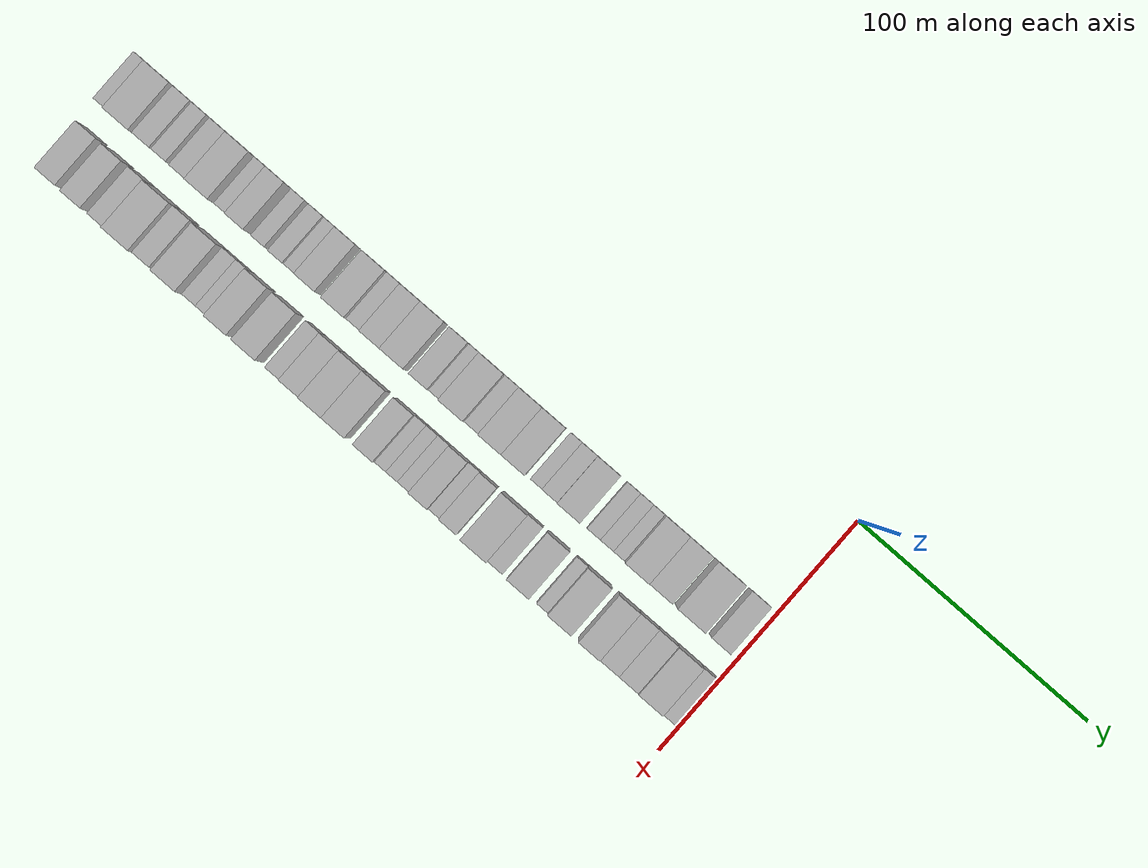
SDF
<sdf version="1.6">
 <world name="default">
  <model name="building_1">
   <static>1</static>
   <pose>50.0000 -275.3579 0 0.000000 0.000000 0.000000</pose>
   <link name="link">
    <pose>0 0 6.00 0 0 0</pose>
    <collision name="collision"><geometry><box><size>20.0000 5.2843 12.0000</size></box></geometry></collision>
    <visual name="visual">
     <cast_shadows>0</cast_shadows>
     <geometry><box><size>20.0000 5.2843 12.0000</size></box></geometry>
     <material>
      <script>
       <uri>model://HANNAS_wall/materials/scripts</uri>
       <uri>model://HANNAS_wall/materials/textures</uri>
       <name>vrc/HANNAS_wall</name>
      </script>
     </material>
    </visual>
   </link>
  </model>
  <model name="building_2">
   <static>1</static>
   <pose>50.0000 -265.2781 0 0.000000 0.000000 0.000000</pose>
   <link name="link">
    <pose>0 0 12.00 0 0 0</pose>
    <collision name="collision"><geometry><box><size>20.0000 10.8752 24.0000</size></box></geometry></collision>
    <visual name="visual">
     <cast_shadows>0</cast_shadows>
     <geometry><box><size>20.0000 10.8752 24.0000</size></box></geometry>
     <material>
      <script>
       <uri>model://HANNAS_wall/materials/scripts</uri>
       <uri>model://HANNAS_wall/materials/textures</uri>
       <name>vrc/HANNAS_wall</name>
      </script>
     </material>
    </visual>
   </link>
  </model>
  <model name="building_3">
   <static>1</static>
   <pose>50.0000 -256.1429 0 0.000000 0.000000 0.000000</pose>
   <link name="link">
    <pose>0 0 9.00 0 0 0</pose>
    <collision name="collision"><geometry><box><size>20.0000 7.3953 18.0000</size></box></geometry></collision>
    <visual name="visual">
     <cast_shadows>0</cast_shadows>
     <geometry><box><size>20.0000 7.3953 18.0000</size></box></geometry>
     <material>
      <script>
       <uri>model://HANNAS_wall/materials/scripts</uri>
       <uri>model://HANNAS_wall/materials/textures</uri>
       <name>vrc/HANNAS_wall</name>
      </script>
     </material>
    </visual>
   </link>
  </model>
  <model name="building_4">
   <static>1</static>
   <pose>50.0000 -249.2715 0 0.000000 0.000000 0.000000</pose>
   <link name="link">
    <pose>0 0 7.50 0 0 0</pose>
    <collision name="collision"><geometry><box><size>20.0000 6.3475 15.0000</size></box></geometry></collision>
    <visual name="visual">
     <cast_shadows>0</cast_shadows>
     <geometry><box><size>20.0000 6.3475 15.0000</size></box></geometry>
     <material>
      <script>
       <uri>model://HANNAS_wall/materials/scripts</uri>
       <uri>model://HANNAS_wall/materials/textures</uri>
       <name>vrc/HANNAS_wall</name>
      </script>
     </material>
    </visual>
   </link>
  </model>
  <model name="building_5">
   <static>1</static>
   <pose>50.0000 -240.1305 0 0.000000 0.000000 0.000000</pose>
   <link name="link">
    <pose>0 0 9.00 0 0 0</pose>
    <collision name="collision"><geometry><box><size>20.0000 7.9344 18.0000</size></box></geometry></collision>
    <visual name="visual">
     <cast_shadows>0</cast_shadows>
     <geometry><box><size>20.0000 7.9344 18.0000</size></box></geometry>
     <material>
      <script>
       <uri>model://HANNAS_wall/materials/scripts</uri>
       <uri>model://HANNAS_wall/materials/textures</uri>
       <name>vrc/HANNAS_wall</name>
      </script>
     </material>
    </visual>
   </link>
  </model>
  <model name="building_6">
   <static>1</static>
   <pose>50.0000 -231.2084 0 0.000000 0.000000 0.000000</pose>
   <link name="link">
    <pose>0 0 12.00 0 0 0</pose>
    <collision name="collision"><geometry><box><size>20.0000 9.9098 24.0000</size></box></geometry></collision>
    <visual name="visual">
     <cast_shadows>0</cast_shadows>
     <geometry><box><size>20.0000 9.9098 24.0000</size></box></geometry>
     <material>
      <script>
       <uri>model://HANNAS_wall/materials/scripts</uri>
       <uri>model://HANNAS_wall/materials/textures</uri>
       <name>vrc/HANNAS_wall</name>
      </script>
     </material>
    </visual>
   </link>
  </model>
  <model name="building_7">
   <static>1</static>
   <pose>50.0000 -223.3316 0 0.000000 0.000000 0.000000</pose>
   <link name="link">
    <pose>0 0 6.00 0 0 0</pose>
    <collision name="collision"><geometry><box><size>20.0000 5.8438 12.0000</size></box></geometry></collision>
    <visual name="visual">
     <cast_shadows>0</cast_shadows>
     <geometry><box><size>20.0000 5.8438 12.0000</size></box></geometry>
     <material>
      <script>
       <uri>model://HANNAS_wall/materials/scripts</uri>
       <uri>model://HANNAS_wall/materials/textures</uri>
       <name>vrc/HANNAS_wall</name>
      </script>
     </material>
    </visual>
   </link>
  </model>
  <model name="building_8">
   <static>1</static>
   <pose>50.0000 -216.3932 0 0.000000 0.000000 0.000000</pose>
   <link name="link">
    <pose>0 0 9.00 0 0 0</pose>
    <collision name="collision"><geometry><box><size>20.0000 8.0331 18.0000</size></box></geometry></collision>
    <visual name="visual">
     <cast_shadows>0</cast_shadows>
     <geometry><box><size>20.0000 8.0331 18.0000</size></box></geometry>
     <material>
      <script>
       <uri>model://HANNAS_wall/materials/scripts</uri>
       <uri>model://HANNAS_wall/materials/textures</uri>
       <name>vrc/HANNAS_wall</name>
      </script>
     </material>
    </visual>
   </link>
  </model>
  <model name="building_9">
   <static>1</static>
   <pose>50.0000 -207.4719 0 0.000000 0.000000 0.000000</pose>
   <link name="link">
    <pose>0 0 6.00 0 0 0</pose>
    <collision name="collision"><geometry><box><size>20.0000 5.8093 12.0000</size></box></geometry></collision>
    <visual name="visual">
     <cast_shadows>0</cast_shadows>
     <geometry><box><size>20.0000 5.8093 12.0000</size></box></geometry>
     <material>
      <script>
       <uri>model://HANNAS_wall/materials/scripts</uri>
       <uri>model://HANNAS_wall/materials/textures</uri>
       <name>vrc/HANNAS_wall</name>
      </script>
     </material>
    </visual>
   </link>
  </model>
  <model name="building_10">
   <static>1</static>
   <pose>50.0000 -199.4390 0 0.000000 0.000000 0.000000</pose>
   <link name="link">
    <pose>0 0 7.50 0 0 0</pose>
    <collision name="collision"><geometry><box><size>20.0000 6.2564 15.0000</size></box></geometry></collision>
    <visual name="visual">
     <cast_shadows>0</cast_shadows>
     <geometry><box><size>20.0000 6.2564 15.0000</size></box></geometry>
     <material>
      <script>
       <uri>model://HANNAS_wall/materials/scripts</uri>
       <uri>model://HANNAS_wall/materials/textures</uri>
       <name>vrc/HANNAS_wall</name>
      </script>
     </material>
    </visual>
   </link>
  </model>
  <model name="building_11">
   <static>1</static>
   <pose>50.0000 -193.6024 0 0.000000 0.000000 0.000000</pose>
   <link name="link">
    <pose>0 0 6.00 0 0 0</pose>
    <collision name="collision"><geometry><box><size>20.0000 5.4169 12.0000</size></box></geometry></collision>
    <visual name="visual">
     <cast_shadows>0</cast_shadows>
     <geometry><box><size>20.0000 5.4169 12.0000</size></box></geometry>
     <material>
      <script>
       <uri>model://HANNAS_wall/materials/scripts</uri>
       <uri>model://HANNAS_wall/materials/textures</uri>
       <name>vrc/HANNAS_wall</name>
      </script>
     </material>
    </visual>
   </link>
  </model>
  <model name="building_12">
   <static>1</static>
   <pose>50.0000 -186.4434 0 0.000000 0.000000 0.000000</pose>
   <link name="link">
    <pose>0 0 9.00 0 0 0</pose>
    <collision name="collision"><geometry><box><size>20.0000 8.9011 18.0000</size></box></geometry></collision>
    <visual name="visual">
     <cast_shadows>0</cast_shadows>
     <geometry><box><size>20.0000 8.9011 18.0000</size></box></geometry>
     <material>
      <script>
       <uri>model://HANNAS_wall/materials/scripts</uri>
       <uri>model://HANNAS_wall/materials/textures</uri>
       <name>vrc/HANNAS_wall</name>
      </script>
     </material>
    </visual>
   </link>
  </model>
  <model name="building_13">
   <static>1</static>
   <pose>50.0000 -174.0192 0 0.000000 0.000000 0.000000</pose>
   <link name="link">
    <pose>0 0 10.50 0 0 0</pose>
    <collision name="collision"><geometry><box><size>20.0000 9.9473 21.0000</size></box></geometry></collision>
    <visual name="visual">
     <cast_shadows>0</cast_shadows>
     <geometry><box><size>20.0000 9.9473 21.0000</size></box></geometry>
     <material>
      <script>
       <uri>model://HANNAS_wall/materials/scripts</uri>
       <uri>model://HANNAS_wall/materials/textures</uri>
       <name>vrc/HANNAS_wall</name>
      </script>
     </material>
    </visual>
   </link>
  </model>
  <model name="building_14">
   <static>1</static>
   <pose>50.0000 -165.8925 0 0.000000 0.000000 0.000000</pose>
   <link name="link">
    <pose>0 0 7.50 0 0 0</pose>
    <collision name="collision"><geometry><box><size>20.0000 6.3062 15.0000</size></box></geometry></collision>
    <visual name="visual">
     <cast_shadows>0</cast_shadows>
     <geometry><box><size>20.0000 6.3062 15.0000</size></box></geometry>
     <material>
      <script>
       <uri>model://HANNAS_wall/materials/scripts</uri>
       <uri>model://HANNAS_wall/materials/textures</uri>
       <name>vrc/HANNAS_wall</name>
      </script>
     </material>
    </visual>
   </link>
  </model>
  <model name="building_15">
   <static>1</static>
   <pose>50.0000 -158.4266 0 0.000000 0.000000 0.000000</pose>
   <link name="link">
    <pose>0 0 10.50 0 0 0</pose>
    <collision name="collision"><geometry><box><size>20.0000 8.6257 21.0000</size></box></geometry></collision>
    <visual name="visual">
     <cast_shadows>0</cast_shadows>
     <geometry><box><size>20.0000 8.6257 21.0000</size></box></geometry>
     <material>
      <script>
       <uri>model://HANNAS_wall/materials/scripts</uri>
       <uri>model://HANNAS_wall/materials/textures</uri>
       <name>vrc/HANNAS_wall</name>
      </script>
     </material>
    </visual>
   </link>
  </model>
  <model name="building_16">
   <static>1</static>
   <pose>50.0000 -149.0510 0 0.000000 0.000000 0.000000</pose>
   <link name="link">
    <pose>0 0 10.50 0 0 0</pose>
    <collision name="collision"><geometry><box><size>20.0000 10.1255 21.0000</size></box></geometry></collision>
    <visual name="visual">
     <cast_shadows>0</cast_shadows>
     <geometry><box><size>20.0000 10.1255 21.0000</size></box></geometry>
     <material>
      <script>
       <uri>model://HANNAS_wall/materials/scripts</uri>
       <uri>model://HANNAS_wall/materials/textures</uri>
       <name>vrc/HANNAS_wall</name>
      </script>
     </material>
    </visual>
   </link>
  </model>
  <model name="building_17">
   <static>1</static>
   <pose>50.0000 -138.0163 0 0.000000 0.000000 0.000000</pose>
   <link name="link">
    <pose>0 0 9.00 0 0 0</pose>
    <collision name="collision"><geometry><box><size>20.0000 7.9438 18.0000</size></box></geometry></collision>
    <visual name="visual">
     <cast_shadows>0</cast_shadows>
     <geometry><box><size>20.0000 7.9438 18.0000</size></box></geometry>
     <material>
      <script>
       <uri>model://HANNAS_wall/materials/scripts</uri>
       <uri>model://HANNAS_wall/materials/textures</uri>
       <name>vrc/HANNAS_wall</name>
      </script>
     </material>
    </visual>
   </link>
  </model>
  <model name="building_18">
   <static>1</static>
   <pose>50.0000 -131.5316 0 0.000000 0.000000 0.000000</pose>
   <link name="link">
    <pose>0 0 6.00 0 0 0</pose>
    <collision name="collision"><geometry><box><size>20.0000 5.0256 12.0000</size></box></geometry></collision>
    <visual name="visual">
     <cast_shadows>0</cast_shadows>
     <geometry><box><size>20.0000 5.0256 12.0000</size></box></geometry>
     <material>
      <script>
       <uri>model://HANNAS_wall/materials/scripts</uri>
       <uri>model://HANNAS_wall/materials/textures</uri>
       <name>vrc/HANNAS_wall</name>
      </script>
     </material>
    </visual>
   </link>
  </model>
  <model name="building_19">
   <static>1</static>
   <pose>50.0000 -123.7338 0 0.000000 0.000000 0.000000</pose>
   <link name="link">
    <pose>0 0 12.00 0 0 0</pose>
    <collision name="collision"><geometry><box><size>20.0000 10.5699 24.0000</size></box></geometry></collision>
    <visual name="visual">
     <cast_shadows>0</cast_shadows>
     <geometry><box><size>20.0000 10.5699 24.0000</size></box></geometry>
     <material>
      <script>
       <uri>model://HANNAS_wall/materials/scripts</uri>
       <uri>model://HANNAS_wall/materials/textures</uri>
       <name>vrc/HANNAS_wall</name>
      </script>
     </material>
    </visual>
   </link>
  </model>
  <model name="building_20">
   <static>1</static>
   <pose>50.0000 -115.3084 0 0.000000 0.000000 0.000000</pose>
   <link name="link">
    <pose>0 0 7.50 0 0 0</pose>
    <collision name="collision"><geometry><box><size>20.0000 6.2810 15.0000</size></box></geometry></collision>
    <visual name="visual">
     <cast_shadows>0</cast_shadows>
     <geometry><box><size>20.0000 6.2810 15.0000</size></box></geometry>
     <material>
      <script>
       <uri>model://HANNAS_wall/materials/scripts</uri>
       <uri>model://HANNAS_wall/materials/textures</uri>
       <name>vrc/HANNAS_wall</name>
      </script>
     </material>
    </visual>
   </link>
  </model>
  <model name="building_21">
   <static>1</static>
   <pose>50.0000 -107.2324 0 0.000000 0.000000 0.000000</pose>
   <link name="link">
    <pose>0 0 12.00 0 0 0</pose>
    <collision name="collision"><geometry><box><size>20.0000 9.8711 24.0000</size></box></geometry></collision>
    <visual name="visual">
     <cast_shadows>0</cast_shadows>
     <geometry><box><size>20.0000 9.8711 24.0000</size></box></geometry>
     <material>
      <script>
       <uri>model://HANNAS_wall/materials/scripts</uri>
       <uri>model://HANNAS_wall/materials/textures</uri>
       <name>vrc/HANNAS_wall</name>
      </script>
     </material>
    </visual>
   </link>
  </model>
  <model name="building_22">
   <static>1</static>
   <pose>50.0000 -97.2972 0 0.000000 0.000000 0.000000</pose>
   <link name="link">
    <pose>0 0 12.00 0 0 0</pose>
    <collision name="collision"><geometry><box><size>20.0000 9.9993 24.0000</size></box></geometry></collision>
    <visual name="visual">
     <cast_shadows>0</cast_shadows>
     <geometry><box><size>20.0000 9.9993 24.0000</size></box></geometry>
     <material>
      <script>
       <uri>model://HANNAS_wall/materials/scripts</uri>
       <uri>model://HANNAS_wall/materials/textures</uri>
       <name>vrc/HANNAS_wall</name>
      </script>
     </material>
    </visual>
   </link>
  </model>
  <model name="building_23">
   <static>1</static>
   <pose>50.0000 -87.7939 0 0.000000 0.000000 0.000000</pose>
   <link name="link">
    <pose>0 0 6.00 0 0 0</pose>
    <collision name="collision"><geometry><box><size>20.0000 5.0073 12.0000</size></box></geometry></collision>
    <visual name="visual">
     <cast_shadows>0</cast_shadows>
     <geometry><box><size>20.0000 5.0073 12.0000</size></box></geometry>
     <material>
      <script>
       <uri>model://HANNAS_wall/materials/scripts</uri>
       <uri>model://HANNAS_wall/materials/textures</uri>
       <name>vrc/HANNAS_wall</name>
      </script>
     </material>
    </visual>
   </link>
  </model>
  <model name="building_24">
   <static>1</static>
   <pose>50.0000 -81.9762 0 0.000000 0.000000 0.000000</pose>
   <link name="link">
    <pose>0 0 7.50 0 0 0</pose>
    <collision name="collision"><geometry><box><size>20.0000 6.6281 15.0000</size></box></geometry></collision>
    <visual name="visual">
     <cast_shadows>0</cast_shadows>
     <geometry><box><size>20.0000 6.6281 15.0000</size></box></geometry>
     <material>
      <script>
       <uri>model://HANNAS_wall/materials/scripts</uri>
       <uri>model://HANNAS_wall/materials/textures</uri>
       <name>vrc/HANNAS_wall</name>
      </script>
     </material>
    </visual>
   </link>
  </model>
  <model name="building_25">
   <static>1</static>
   <pose>50.0000 -73.7933 0 0.000000 0.000000 0.000000</pose>
   <link name="link">
    <pose>0 0 10.50 0 0 0</pose>
    <collision name="collision"><geometry><box><size>20.0000 9.7376 21.0000</size></box></geometry></collision>
    <visual name="visual">
     <cast_shadows>0</cast_shadows>
     <geometry><box><size>20.0000 9.7376 21.0000</size></box></geometry>
     <material>
      <script>
       <uri>model://HANNAS_wall/materials/scripts</uri>
       <uri>model://HANNAS_wall/materials/textures</uri>
       <name>vrc/HANNAS_wall</name>
      </script>
     </material>
    </visual>
   </link>
  </model>
  <model name="building_26">
   <static>1</static>
   <pose>50.0000 -63.0612 0 0.000000 0.000000 0.000000</pose>
   <link name="link">
    <pose>0 0 6.00 0 0 0</pose>
    <collision name="collision"><geometry><box><size>20.0000 5.7266 12.0000</size></box></geometry></collision>
    <visual name="visual">
     <cast_shadows>0</cast_shadows>
     <geometry><box><size>20.0000 5.7266 12.0000</size></box></geometry>
     <material>
      <script>
       <uri>model://HANNAS_wall/materials/scripts</uri>
       <uri>model://HANNAS_wall/materials/textures</uri>
       <name>vrc/HANNAS_wall</name>
      </script>
     </material>
    </visual>
   </link>
  </model>
  <model name="building_27">
   <static>1</static>
   <pose>50.0000 -57.3837 0 0.000000 0.000000 0.000000</pose>
   <link name="link">
    <pose>0 0 6.00 0 0 0</pose>
    <collision name="collision"><geometry><box><size>20.0000 5.6284 12.0000</size></box></geometry></collision>
    <visual name="visual">
     <cast_shadows>0</cast_shadows>
     <geometry><box><size>20.0000 5.6284 12.0000</size></box></geometry>
     <material>
      <script>
       <uri>model://HANNAS_wall/materials/scripts</uri>
       <uri>model://HANNAS_wall/materials/textures</uri>
       <name>vrc/HANNAS_wall</name>
      </script>
     </material>
    </visual>
   </link>
  </model>
  <model name="building_28">
   <static>1</static>
   <pose>50.0000 -52.1638 0 0.000000 0.000000 0.000000</pose>
   <link name="link">
    <pose>0 0 6.00 0 0 0</pose>
    <collision name="collision"><geometry><box><size>20.0000 4.8116 12.0000</size></box></geometry></collision>
    <visual name="visual">
     <cast_shadows>0</cast_shadows>
     <geometry><box><size>20.0000 4.8116 12.0000</size></box></geometry>
     <material>
      <script>
       <uri>model://HANNAS_wall/materials/scripts</uri>
       <uri>model://HANNAS_wall/materials/textures</uri>
       <name>vrc/HANNAS_wall</name>
      </script>
     </material>
    </visual>
   </link>
  </model>
  <model name="building_29">
   <static>1</static>
   <pose>50.0000 -44.6425 0 0.000000 0.000000 0.000000</pose>
   <link name="link">
    <pose>0 0 12.00 0 0 0</pose>
    <collision name="collision"><geometry><box><size>20.0000 10.2310 24.0000</size></box></geometry></collision>
    <visual name="visual">
     <cast_shadows>0</cast_shadows>
     <geometry><box><size>20.0000 10.2310 24.0000</size></box></geometry>
     <material>
      <script>
       <uri>model://HANNAS_wall/materials/scripts</uri>
       <uri>model://HANNAS_wall/materials/textures</uri>
       <name>vrc/HANNAS_wall</name>
      </script>
     </material>
    </visual>
   </link>
  </model>
  <model name="building_30">
   <static>1</static>
   <pose>50.0000 -34.5678 0 0.000000 0.000000 0.000000</pose>
   <link name="link">
    <pose>0 0 10.50 0 0 0</pose>
    <collision name="collision"><geometry><box><size>20.0000 9.9183 21.0000</size></box></geometry></collision>
    <visual name="visual">
     <cast_shadows>0</cast_shadows>
     <geometry><box><size>20.0000 9.9183 21.0000</size></box></geometry>
     <material>
      <script>
       <uri>model://HANNAS_wall/materials/scripts</uri>
       <uri>model://HANNAS_wall/materials/textures</uri>
       <name>vrc/HANNAS_wall</name>
      </script>
     </material>
    </visual>
   </link>
  </model>
  <model name="building_31">
   <static>1</static>
   <pose>50.0000 -21.7144 0 0.000000 0.000000 0.000000</pose>
   <link name="link">
    <pose>0 0 12.00 0 0 0</pose>
    <collision name="collision"><geometry><box><size>20.0000 11.7885 24.0000</size></box></geometry></collision>
    <visual name="visual">
     <cast_shadows>0</cast_shadows>
     <geometry><box><size>20.0000 11.7885 24.0000</size></box></geometry>
     <material>
      <script>
       <uri>model://HANNAS_wall/materials/scripts</uri>
       <uri>model://HANNAS_wall/materials/textures</uri>
       <name>vrc/HANNAS_wall</name>
      </script>
     </material>
    </visual>
   </link>
  </model>
  <model name="building_32">
   <static>1</static>
   <pose>50.0000 -8.7360 0 0.000000 0.000000 0.000000</pose>
   <link name="link">
    <pose>0 0 9.00 0 0 0</pose>
    <collision name="collision"><geometry><box><size>20.0000 8.1682 18.0000</size></box></geometry></collision>
    <visual name="visual">
     <cast_shadows>0</cast_shadows>
     <geometry><box><size>20.0000 8.1682 18.0000</size></box></geometry>
     <material>
      <script>
       <uri>model://HANNAS_wall/materials/scripts</uri>
       <uri>model://HANNAS_wall/materials/textures</uri>
       <name>vrc/HANNAS_wall</name>
      </script>
     </material>
    </visual>
   </link>
  </model>
  <model name="building_65">
   <static>1</static>
   <pose>79.0000 -271.6233 0 0.000000 0.000000 0.000000</pose>
   <link name="link">
    <pose>0 0 9.00 0 0 0</pose>
    <collision name="collision"><geometry><box><size>20.0000 8.7535 18.0000</size></box></geometry></collision>
    <visual name="visual">
     <cast_shadows>0</cast_shadows>
     <geometry><box><size>20.0000 8.7535 18.0000</size></box></geometry>
     <material>
      <script>
       <uri>model://HANNAS_wall/materials/scripts</uri>
       <uri>model://HANNAS_wall/materials/textures</uri>
       <name>vrc/HANNAS_wall</name>
      </script>
     </material>
    </visual>
   </link>
  </model>
  <model name="building_66">
   <static>1</static>
   <pose>79.0000 -259.9285 0 0.000000 0.000000 0.000000</pose>
   <link name="link">
    <pose>0 0 10.50 0 0 0</pose>
    <collision name="collision"><geometry><box><size>20.0000 8.6360 21.0000</size></box></geometry></collision>
    <visual name="visual">
     <cast_shadows>0</cast_shadows>
     <geometry><box><size>20.0000 8.6360 21.0000</size></box></geometry>
     <material>
      <script>
       <uri>model://HANNAS_wall/materials/scripts</uri>
       <uri>model://HANNAS_wall/materials/textures</uri>
       <name>vrc/HANNAS_wall</name>
      </script>
     </material>
    </visual>
   </link>
  </model>
  <model name="building_67">
   <static>1</static>
   <pose>79.0000 -249.7857 0 0.000000 0.000000 0.000000</pose>
   <link name="link">
    <pose>0 0 9.00 0 0 0</pose>
    <collision name="collision"><geometry><box><size>20.0000 7.6496 18.0000</size></box></geometry></collision>
    <visual name="visual">
     <cast_shadows>0</cast_shadows>
     <geometry><box><size>20.0000 7.6496 18.0000</size></box></geometry>
     <material>
      <script>
       <uri>model://HANNAS_wall/materials/scripts</uri>
       <uri>model://HANNAS_wall/materials/textures</uri>
       <name>vrc/HANNAS_wall</name>
      </script>
     </material>
    </visual>
   </link>
  </model>
  <model name="building_68">
   <static>1</static>
   <pose>79.0000 -240.2579 0 0.000000 0.000000 0.000000</pose>
   <link name="link">
    <pose>0 0 12.00 0 0 0</pose>
    <collision name="collision"><geometry><box><size>20.0000 11.4059 24.0000</size></box></geometry></collision>
    <visual name="visual">
     <cast_shadows>0</cast_shadows>
     <geometry><box><size>20.0000 11.4059 24.0000</size></box></geometry>
     <material>
      <script>
       <uri>model://HANNAS_wall/materials/scripts</uri>
       <uri>model://HANNAS_wall/materials/textures</uri>
       <name>vrc/HANNAS_wall</name>
      </script>
     </material>
    </visual>
   </link>
  </model>
  <model name="building_69">
   <static>1</static>
   <pose>79.0000 -230.8504 0 0.000000 0.000000 0.000000</pose>
   <link name="link">
    <pose>0 0 9.00 0 0 0</pose>
    <collision name="collision"><geometry><box><size>20.0000 7.4092 18.0000</size></box></geometry></collision>
    <visual name="visual">
     <cast_shadows>0</cast_shadows>
     <geometry><box><size>20.0000 7.4092 18.0000</size></box></geometry>
     <material>
      <script>
       <uri>model://HANNAS_wall/materials/scripts</uri>
       <uri>model://HANNAS_wall/materials/textures</uri>
       <name>vrc/HANNAS_wall</name>
      </script>
     </material>
    </visual>
   </link>
  </model>
  <model name="building_70">
   <static>1</static>
   <pose>79.0000 -219.9303 0 0.000000 0.000000 0.000000</pose>
   <link name="link">
    <pose>0 0 12.00 0 0 0</pose>
    <collision name="collision"><geometry><box><size>20.0000 10.4309 24.0000</size></box></geometry></collision>
    <visual name="visual">
     <cast_shadows>0</cast_shadows>
     <geometry><box><size>20.0000 10.4309 24.0000</size></box></geometry>
     <material>
      <script>
       <uri>model://HANNAS_wall/materials/scripts</uri>
       <uri>model://HANNAS_wall/materials/textures</uri>
       <name>vrc/HANNAS_wall</name>
      </script>
     </material>
    </visual>
   </link>
  </model>
  <model name="building_71">
   <static>1</static>
   <pose>79.0000 -211.7836 0 0.000000 0.000000 0.000000</pose>
   <link name="link">
    <pose>0 0 6.00 0 0 0</pose>
    <collision name="collision"><geometry><box><size>20.0000 5.8625 12.0000</size></box></geometry></collision>
    <visual name="visual">
     <cast_shadows>0</cast_shadows>
     <geometry><box><size>20.0000 5.8625 12.0000</size></box></geometry>
     <material>
      <script>
       <uri>model://HANNAS_wall/materials/scripts</uri>
       <uri>model://HANNAS_wall/materials/textures</uri>
       <name>vrc/HANNAS_wall</name>
      </script>
     </material>
    </visual>
   </link>
  </model>
  <model name="building_72">
   <static>1</static>
   <pose>79.0000 -206.1311 0 0.000000 0.000000 0.000000</pose>
   <link name="link">
    <pose>0 0 6.00 0 0 0</pose>
    <collision name="collision"><geometry><box><size>20.0000 5.4426 12.0000</size></box></geometry></collision>
    <visual name="visual">
     <cast_shadows>0</cast_shadows>
     <geometry><box><size>20.0000 5.4426 12.0000</size></box></geometry>
     <material>
      <script>
       <uri>model://HANNAS_wall/materials/scripts</uri>
       <uri>model://HANNAS_wall/materials/textures</uri>
       <name>vrc/HANNAS_wall</name>
      </script>
     </material>
    </visual>
   </link>
  </model>
  <model name="building_73">
   <static>1</static>
   <pose>79.0000 -198.5769 0 0.000000 0.000000 0.000000</pose>
   <link name="link">
    <pose>0 0 10.50 0 0 0</pose>
    <collision name="collision"><geometry><box><size>20.0000 9.6657 21.0000</size></box></geometry></collision>
    <visual name="visual">
     <cast_shadows>0</cast_shadows>
     <geometry><box><size>20.0000 9.6657 21.0000</size></box></geometry>
     <material>
      <script>
       <uri>model://HANNAS_wall/materials/scripts</uri>
       <uri>model://HANNAS_wall/materials/textures</uri>
       <name>vrc/HANNAS_wall</name>
      </script>
     </material>
    </visual>
   </link>
  </model>
  <model name="building_74">
   <static>1</static>
   <pose>79.0000 -186.6282 0 0.000000 0.000000 0.000000</pose>
   <link name="link">
    <pose>0 0 10.50 0 0 0</pose>
    <collision name="collision"><geometry><box><size>20.0000 10.2318 21.0000</size></box></geometry></collision>
    <visual name="visual">
     <cast_shadows>0</cast_shadows>
     <geometry><box><size>20.0000 10.2318 21.0000</size></box></geometry>
     <material>
      <script>
       <uri>model://HANNAS_wall/materials/scripts</uri>
       <uri>model://HANNAS_wall/materials/textures</uri>
       <name>vrc/HANNAS_wall</name>
      </script>
     </material>
    </visual>
   </link>
  </model>
  <model name="building_75">
   <static>1</static>
   <pose>79.0000 -175.3378 0 0.000000 0.000000 0.000000</pose>
   <link name="link">
    <pose>0 0 7.50 0 0 0</pose>
    <collision name="collision"><geometry><box><size>20.0000 6.3490 15.0000</size></box></geometry></collision>
    <visual name="visual">
     <cast_shadows>0</cast_shadows>
     <geometry><box><size>20.0000 6.3490 15.0000</size></box></geometry>
     <material>
      <script>
       <uri>model://HANNAS_wall/materials/scripts</uri>
       <uri>model://HANNAS_wall/materials/textures</uri>
       <name>vrc/HANNAS_wall</name>
      </script>
     </material>
    </visual>
   </link>
  </model>
  <model name="building_76">
   <static>1</static>
   <pose>79.0000 -167.8065 0 0.000000 0.000000 0.000000</pose>
   <link name="link">
    <pose>0 0 9.00 0 0 0</pose>
    <collision name="collision"><geometry><box><size>20.0000 8.7136 18.0000</size></box></geometry></collision>
    <visual name="visual">
     <cast_shadows>0</cast_shadows>
     <geometry><box><size>20.0000 8.7136 18.0000</size></box></geometry>
     <material>
      <script>
       <uri>model://HANNAS_wall/materials/scripts</uri>
       <uri>model://HANNAS_wall/materials/textures</uri>
       <name>vrc/HANNAS_wall</name>
      </script>
     </material>
    </visual>
   </link>
  </model>
  <model name="building_77">
   <static>1</static>
   <pose>79.0000 -158.5055 0 0.000000 0.000000 0.000000</pose>
   <link name="link">
    <pose>0 0 10.50 0 0 0</pose>
    <collision name="collision"><geometry><box><size>20.0000 9.8883 21.0000</size></box></geometry></collision>
    <visual name="visual">
     <cast_shadows>0</cast_shadows>
     <geometry><box><size>20.0000 9.8883 21.0000</size></box></geometry>
     <material>
      <script>
       <uri>model://HANNAS_wall/materials/scripts</uri>
       <uri>model://HANNAS_wall/materials/textures</uri>
       <name>vrc/HANNAS_wall</name>
      </script>
     </material>
    </visual>
   </link>
  </model>
  <model name="building_78">
   <static>1</static>
   <pose>79.0000 -148.5980 0 0.000000 0.000000 0.000000</pose>
   <link name="link">
    <pose>0 0 10.50 0 0 0</pose>
    <collision name="collision"><geometry><box><size>20.0000 9.9268 21.0000</size></box></geometry></collision>
    <visual name="visual">
     <cast_shadows>0</cast_shadows>
     <geometry><box><size>20.0000 9.9268 21.0000</size></box></geometry>
     <material>
      <script>
       <uri>model://HANNAS_wall/materials/scripts</uri>
       <uri>model://HANNAS_wall/materials/textures</uri>
       <name>vrc/HANNAS_wall</name>
      </script>
     </material>
    </visual>
   </link>
  </model>
  <model name="building_79">
   <static>1</static>
   <pose>79.0000 -136.3057 0 0.000000 0.000000 0.000000</pose>
   <link name="link">
    <pose>0 0 9.00 0 0 0</pose>
    <collision name="collision"><geometry><box><size>20.0000 8.6578 18.0000</size></box></geometry></collision>
    <visual name="visual">
     <cast_shadows>0</cast_shadows>
     <geometry><box><size>20.0000 8.6578 18.0000</size></box></geometry>
     <material>
      <script>
       <uri>model://HANNAS_wall/materials/scripts</uri>
       <uri>model://HANNAS_wall/materials/textures</uri>
       <name>vrc/HANNAS_wall</name>
      </script>
     </material>
    </visual>
   </link>
  </model>
  <model name="building_80">
   <static>1</static>
   <pose>79.0000 -129.5192 0 0.000000 0.000000 0.000000</pose>
   <link name="link">
    <pose>0 0 6.00 0 0 0</pose>
    <collision name="collision"><geometry><box><size>20.0000 4.9153 12.0000</size></box></geometry></collision>
    <visual name="visual">
     <cast_shadows>0</cast_shadows>
     <geometry><box><size>20.0000 4.9153 12.0000</size></box></geometry>
     <material>
      <script>
       <uri>model://HANNAS_wall/materials/scripts</uri>
       <uri>model://HANNAS_wall/materials/textures</uri>
       <name>vrc/HANNAS_wall</name>
      </script>
     </material>
    </visual>
   </link>
  </model>
  <model name="building_81">
   <static>1</static>
   <pose>79.0000 -124.5815 0 0.000000 0.000000 0.000000</pose>
   <link name="link">
    <pose>0 0 6.00 0 0 0</pose>
    <collision name="collision"><geometry><box><size>20.0000 4.9602 12.0000</size></box></geometry></collision>
    <visual name="visual">
     <cast_shadows>0</cast_shadows>
     <geometry><box><size>20.0000 4.9602 12.0000</size></box></geometry>
     <material>
      <script>
       <uri>model://HANNAS_wall/materials/scripts</uri>
       <uri>model://HANNAS_wall/materials/textures</uri>
       <name>vrc/HANNAS_wall</name>
      </script>
     </material>
    </visual>
   </link>
  </model>
  <model name="building_82">
   <static>1</static>
   <pose>79.0000 -119.5411 0 0.000000 0.000000 0.000000</pose>
   <link name="link">
    <pose>0 0 6.00 0 0 0</pose>
    <collision name="collision"><geometry><box><size>20.0000 5.1207 12.0000</size></box></geometry></collision>
    <visual name="visual">
     <cast_shadows>0</cast_shadows>
     <geometry><box><size>20.0000 5.1207 12.0000</size></box></geometry>
     <material>
      <script>
       <uri>model://HANNAS_wall/materials/scripts</uri>
       <uri>model://HANNAS_wall/materials/textures</uri>
       <name>vrc/HANNAS_wall</name>
      </script>
     </material>
    </visual>
   </link>
  </model>
  <model name="building_83">
   <static>1</static>
   <pose>79.0000 -112.9087 0 0.000000 0.000000 0.000000</pose>
   <link name="link">
    <pose>0 0 9.00 0 0 0</pose>
    <collision name="collision"><geometry><box><size>20.0000 8.1441 18.0000</size></box></geometry></collision>
    <visual name="visual">
     <cast_shadows>0</cast_shadows>
     <geometry><box><size>20.0000 8.1441 18.0000</size></box></geometry>
     <material>
      <script>
       <uri>model://HANNAS_wall/materials/scripts</uri>
       <uri>model://HANNAS_wall/materials/textures</uri>
       <name>vrc/HANNAS_wall</name>
      </script>
     </material>
    </visual>
   </link>
  </model>
  <model name="building_84">
   <static>1</static>
   <pose>79.0000 -106.4033 0 0.000000 0.000000 0.000000</pose>
   <link name="link">
    <pose>0 0 6.00 0 0 0</pose>
    <collision name="collision"><geometry><box><size>20.0000 4.8666 12.0000</size></box></geometry></collision>
    <visual name="visual">
     <cast_shadows>0</cast_shadows>
     <geometry><box><size>20.0000 4.8666 12.0000</size></box></geometry>
     <material>
      <script>
       <uri>model://HANNAS_wall/materials/scripts</uri>
       <uri>model://HANNAS_wall/materials/textures</uri>
       <name>vrc/HANNAS_wall</name>
      </script>
     </material>
    </visual>
   </link>
  </model>
  <model name="building_85">
   <static>1</static>
   <pose>79.0000 -100.1828 0 0.000000 0.000000 0.000000</pose>
   <link name="link">
    <pose>0 0 9.00 0 0 0</pose>
    <collision name="collision"><geometry><box><size>20.0000 7.5745 18.0000</size></box></geometry></collision>
    <visual name="visual">
     <cast_shadows>0</cast_shadows>
     <geometry><box><size>20.0000 7.5745 18.0000</size></box></geometry>
     <material>
      <script>
       <uri>model://HANNAS_wall/materials/scripts</uri>
       <uri>model://HANNAS_wall/materials/textures</uri>
       <name>vrc/HANNAS_wall</name>
      </script>
     </material>
    </visual>
   </link>
  </model>
  <model name="building_86">
   <static>1</static>
   <pose>79.0000 -88.8193 0 0.000000 0.000000 0.000000</pose>
   <link name="link">
    <pose>0 0 12.00 0 0 0</pose>
    <collision name="collision"><geometry><box><size>20.0000 11.1524 24.0000</size></box></geometry></collision>
    <visual name="visual">
     <cast_shadows>0</cast_shadows>
     <geometry><box><size>20.0000 11.1524 24.0000</size></box></geometry>
     <material>
      <script>
       <uri>model://HANNAS_wall/materials/scripts</uri>
       <uri>model://HANNAS_wall/materials/textures</uri>
       <name>vrc/HANNAS_wall</name>
      </script>
     </material>
    </visual>
   </link>
  </model>
  <model name="building_87">
   <static>1</static>
   <pose>79.0000 -80.0393 0 0.000000 0.000000 0.000000</pose>
   <link name="link">
    <pose>0 0 7.50 0 0 0</pose>
    <collision name="collision"><geometry><box><size>20.0000 6.4076 15.0000</size></box></geometry></collision>
    <visual name="visual">
     <cast_shadows>0</cast_shadows>
     <geometry><box><size>20.0000 6.4076 15.0000</size></box></geometry>
     <material>
      <script>
       <uri>model://HANNAS_wall/materials/scripts</uri>
       <uri>model://HANNAS_wall/materials/textures</uri>
       <name>vrc/HANNAS_wall</name>
      </script>
     </material>
    </visual>
   </link>
  </model>
  <model name="building_88">
   <static>1</static>
   <pose>79.0000 -70.0729 0 0.000000 0.000000 0.000000</pose>
   <link name="link">
    <pose>0 0 10.50 0 0 0</pose>
    <collision name="collision"><geometry><box><size>20.0000 9.5252 21.0000</size></box></geometry></collision>
    <visual name="visual">
     <cast_shadows>0</cast_shadows>
     <geometry><box><size>20.0000 9.5252 21.0000</size></box></geometry>
     <material>
      <script>
       <uri>model://HANNAS_wall/materials/scripts</uri>
       <uri>model://HANNAS_wall/materials/textures</uri>
       <name>vrc/HANNAS_wall</name>
      </script>
     </material>
    </visual>
   </link>
  </model>
  <model name="building_89">
   <static>1</static>
   <pose>79.0000 -59.9031 0 0.000000 0.000000 0.000000</pose>
   <link name="link">
    <pose>0 0 6.00 0 0 0</pose>
    <collision name="collision"><geometry><box><size>20.0000 4.8146 12.0000</size></box></geometry></collision>
    <visual name="visual">
     <cast_shadows>0</cast_shadows>
     <geometry><box><size>20.0000 4.8146 12.0000</size></box></geometry>
     <material>
      <script>
       <uri>model://HANNAS_wall/materials/scripts</uri>
       <uri>model://HANNAS_wall/materials/textures</uri>
       <name>vrc/HANNAS_wall</name>
      </script>
     </material>
    </visual>
   </link>
  </model>
  <model name="building_90">
   <static>1</static>
   <pose>79.0000 -52.4016 0 0.000000 0.000000 0.000000</pose>
   <link name="link">
    <pose>0 0 10.50 0 0 0</pose>
    <collision name="collision"><geometry><box><size>20.0000 10.1884 21.0000</size></box></geometry></collision>
    <visual name="visual">
     <cast_shadows>0</cast_shadows>
     <geometry><box><size>20.0000 10.1884 21.0000</size></box></geometry>
     <material>
      <script>
       <uri>model://HANNAS_wall/materials/scripts</uri>
       <uri>model://HANNAS_wall/materials/textures</uri>
       <name>vrc/HANNAS_wall</name>
      </script>
     </material>
    </visual>
   </link>
  </model>
  <model name="building_91">
   <static>1</static>
   <pose>79.0000 -39.7304 0 0.000000 0.000000 0.000000</pose>
   <link name="link">
    <pose>0 0 10.50 0 0 0</pose>
    <collision name="collision"><geometry><box><size>20.0000 9.1539 21.0000</size></box></geometry></collision>
    <visual name="visual">
     <cast_shadows>0</cast_shadows>
     <geometry><box><size>20.0000 9.1539 21.0000</size></box></geometry>
     <material>
      <script>
       <uri>model://HANNAS_wall/materials/scripts</uri>
       <uri>model://HANNAS_wall/materials/textures</uri>
       <name>vrc/HANNAS_wall</name>
      </script>
     </material>
    </visual>
   </link>
  </model>
  <model name="building_92">
   <static>1</static>
   <pose>79.0000 -31.0681 0 0.000000 0.000000 0.000000</pose>
   <link name="link">
    <pose>0 0 9.00 0 0 0</pose>
    <collision name="collision"><geometry><box><size>20.0000 8.1707 18.0000</size></box></geometry></collision>
    <visual name="visual">
     <cast_shadows>0</cast_shadows>
     <geometry><box><size>20.0000 8.1707 18.0000</size></box></geometry>
     <material>
      <script>
       <uri>model://HANNAS_wall/materials/scripts</uri>
       <uri>model://HANNAS_wall/materials/textures</uri>
       <name>vrc/HANNAS_wall</name>
      </script>
     </material>
    </visual>
   </link>
  </model>
  <model name="building_93">
   <static>1</static>
   <pose>79.0000 -22.8939 0 0.000000 0.000000 0.000000</pose>
   <link name="link">
    <pose>0 0 9.00 0 0 0</pose>
    <collision name="collision"><geometry><box><size>20.0000 8.1778 18.0000</size></box></geometry></collision>
    <visual name="visual">
     <cast_shadows>0</cast_shadows>
     <geometry><box><size>20.0000 8.1778 18.0000</size></box></geometry>
     <material>
      <script>
       <uri>model://HANNAS_wall/materials/scripts</uri>
       <uri>model://HANNAS_wall/materials/textures</uri>
       <name>vrc/HANNAS_wall</name>
      </script>
     </material>
    </visual>
   </link>
  </model>
  <model name="building_94">
   <static>1</static>
   <pose>79.0000 -13.5717 0 0.000000 0.000000 0.000000</pose>
   <link name="link">
    <pose>0 0 10.50 0 0 0</pose>
    <collision name="collision"><geometry><box><size>20.0000 10.4665 21.0000</size></box></geometry></collision>
    <visual name="visual">
     <cast_shadows>0</cast_shadows>
     <geometry><box><size>20.0000 10.4665 21.0000</size></box></geometry>
     <material>
      <script>
       <uri>model://HANNAS_wall/materials/scripts</uri>
       <uri>model://HANNAS_wall/materials/textures</uri>
       <name>vrc/HANNAS_wall</name>
      </script>
     </material>
    </visual>
   </link>
  </model>
  <model name="building_95">
   <static>1</static>
   <pose>79.0000 -5.1570 0 0.000000 0.000000 0.000000</pose>
   <link name="link">
    <pose>0 0 7.50 0 0 0</pose>
    <collision name="collision"><geometry><box><size>20.0000 6.3628 15.0000</size></box></geometry></collision>
    <visual name="visual">
     <cast_shadows>0</cast_shadows>
     <geometry><box><size>20.0000 6.3628 15.0000</size></box></geometry>
     <material>
      <script>
       <uri>model://HANNAS_wall/materials/scripts</uri>
       <uri>model://HANNAS_wall/materials/textures</uri>
       <name>vrc/HANNAS_wall</name>
      </script>
     </material>
    </visual>
   </link>
  </model>
 </world>
</sdf>
